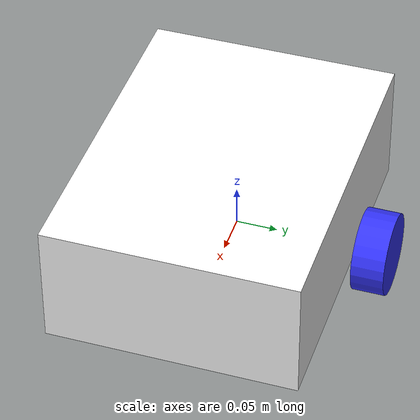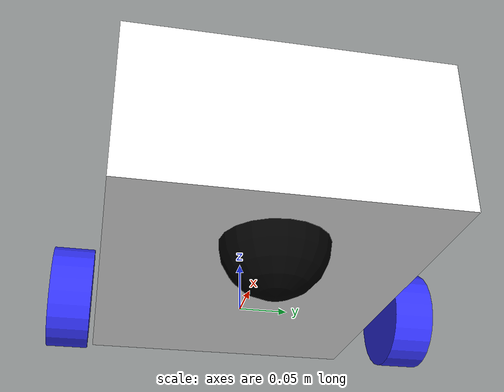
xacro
<?xml version="1.0"?>
<robot xmlns:xacro="http://www.ros.org/wiki/xacro" >

    <xacro:include filename="inertial_macros.xacro" />

    <material name="white">
        <color rgba="1 1 1 1" />
    </material>

    <material name="orange">
        <color rgba="1 0.3 0.1 1" />
    </material>

    <material name="blue">
        <color rgba="0.2 0.2 1 1" />
    </material>

    <material name="black">
        <color rgba="0 0 0 1" />
    </material>

    <material name="red">
        <color rgba="1 0 0 1" />
    </material>

    <!-- BASE LINK -->

    <link name="base_link">

    </link>

    <!-- CHASSIS LINK -->

    <link name="chassis">
        <visual>
            <geometry>
                <box size="0.4 0.3 0.15" />
            </geometry>
            <origin xyz="0.15 0 0.075" />
            <material name="white" />
        </visual>

        <collision>
            <geometry>
                <box size="0.4 0.3 0.15" />
            </geometry>
            <origin xyz="0.15 0 0.075" />
        </collision>

        <xacro:inertial_box mass="0.5" x="0.3" y="0.3" z="0.15">
            <origin xyz="0.15 0 0.075" rpy="0 0 0" />
        </xacro:inertial_box>
    </link>

    <gazebo reference="chassis">
        <material>Gazebo/White</material>
    </gazebo>

    <!-- LEFT WHEEL LINK -->

    <link name="left_wheel">
        <visual>
            <geometry>
                <cylinder radius="0.05" length="0.04" />
            </geometry>
            <material name="blue" />
        </visual>

        <collision>
            <geometry>
                <cylinder radius="0.05" length="0.04" />
            </geometry>
        </collision>

        <xacro:inertial_cylinder mass="0.1" radius="0.05" length="0.04">
            <origin xyz="0 0 0" rpy="0 0 0" />
        </xacro:inertial_cylinder>
    </link>

    <gazebo reference="left_wheel">
        <material>Gazebo/Blue</material>
        <mu1>1.0</mu1>
        <mu2>1.0</mu2>
    </gazebo>

    <!-- RIGHT WHEEL LINK -->

    <link name="right_wheel">
        <visual>
            <geometry>
                <cylinder radius="0.05" length="0.04" />
            </geometry>
            <material name="blue" />
        </visual>

        <collision>
            <geometry>
                <cylinder radius="0.05" length="0.04" />
            </geometry>
        </collision>

        <xacro:inertial_cylinder mass="0.1" radius="0.05" length="0.04">
            <origin xyz="0 0 0" rpy="0 0 0" />
        </xacro:inertial_cylinder>
    </link>

    <gazebo reference="right_wheel">
        <material>Gazebo/Blue</material>
        <mu1>1.0</mu1>
        <mu2>1.0</mu2>
    </gazebo>

    <!-- CASTER WHEEL LINK-->

    <link name="caster_wheel">
        <visual>
            <geometry>
                <sphere radius="0.05" />
            </geometry>
            <material name="black" />
        </visual>

        <collision>
            <geometry>
                <sphere radius="0.05" />
            </geometry>
        </collision>

        <xacro:inertial_sphere mass="0.1" radius="0.05">
            <origin xyz="0 0 0" rpy="0 0 0" />
        </xacro:inertial_sphere>
    </link>

    <gazebo reference="caster_wheel">
        <material>Gazebo/Black</material>
        <mu1>0.0</mu1>
        <mu2>0.0</mu2>
    </gazebo>

    <!-- CHASSIS JOINT -->

    <joint name="base_chassis_joint" type="fixed">
        <parent link="base_link" />
        <child link="chassis" />
        <origin xyz="-0.1 0 0" />
    </joint>

    <!-- LEFT WHEEL JOINT -->

    <joint name="base_left_wheel_joint" type="continuous">
        <parent link="base_link" />
        <child link="left_wheel" />
        <origin xyz="0 0.175 0" rpy="-${pi/2} 0 0" />
        <axis xyz="0 0 1" />
    </joint>

    <!-- RIGHT WHEEL JOINT -->

    <joint name="base_right_wheel_joint" type="continuous">
        <parent link="base_link" />
        <child link="right_wheel" />
        <origin xyz="0 -0.175 0" rpy="${pi/2} 0 0" />
        <axis xyz="0 0 -1" />
    </joint>

    <!-- CASTER WHEEL JOINT-->

    <joint name="base_caster_wheel_joint" type="fixed">
        <parent link="base_link" />
        <child link="caster_wheel" />
        <origin xyz="0.16 0 0" />
    </joint>

</robot>
